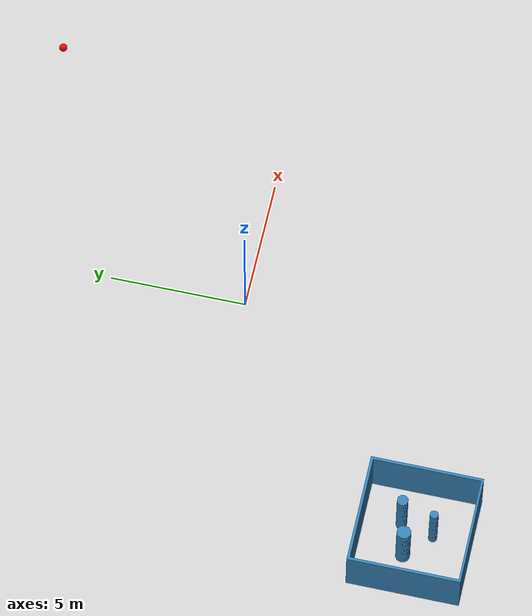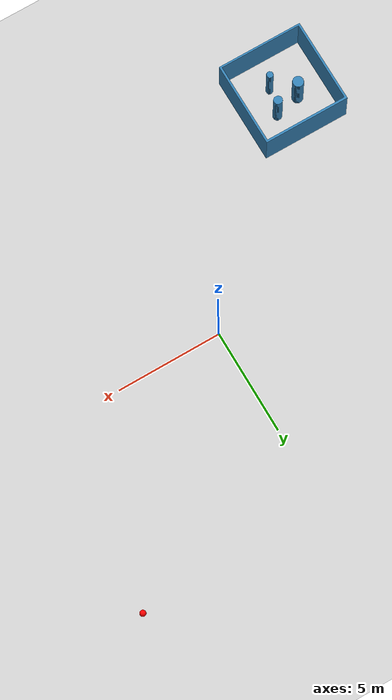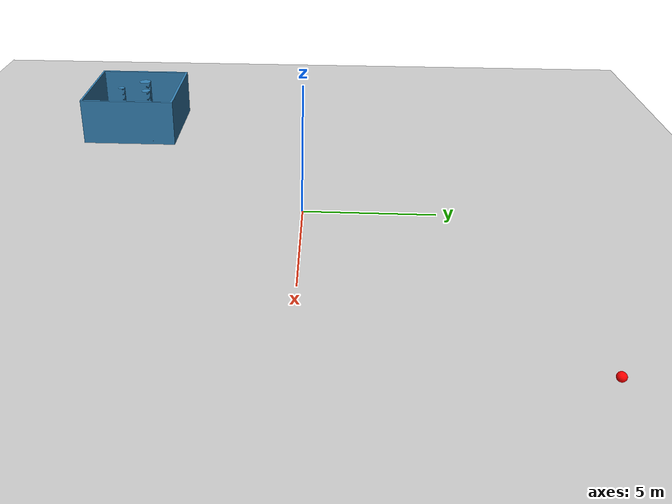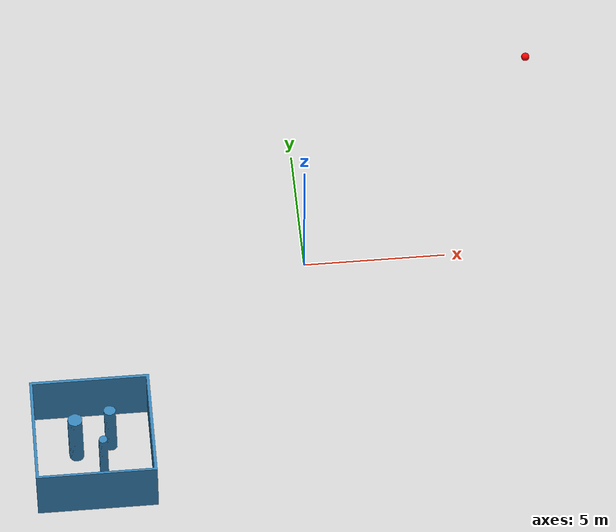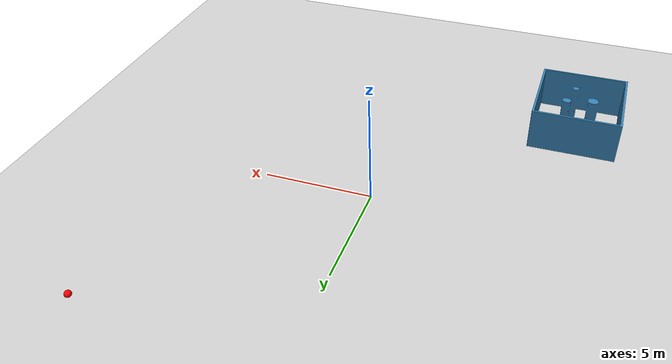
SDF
<?xml version="1.0" ?>
<sdf version="1.8">
  <world name="tp2_complex">
    <plugin filename="gz-sim-physics-system" name="gz::sim::systems::Physics"></plugin>
    <plugin filename="gz-sim-scene-broadcaster-system" name="gz::sim::systems::SceneBroadcaster"></plugin>
    <plugin filename="gz-sim-user-commands-system" name="gz::sim::systems::UserCommands"></plugin>

    <light type="directional" name="sun">
      <cast_shadows>true</cast_shadows>
      <pose>0 0 10 0 0 0</pose>
      <diffuse>0.8 0.8 0.8 1</diffuse>
      <specular>0.2 0.2 0.2 1</specular>
      <attenuation>
        <range>1000</range>
        <constant>0.9</constant>
        <linear>0.01</linear>
        <quadratic>0.001</quadratic>
      </attenuation>
      <direction>-0.5 0.1 -0.9</direction>
    </light>

    <!-- Keeps the floor grid so your map has something to sit on -->
    <model name="ground_plane">
      <static>true</static>
      <link name="link">
        <collision name="collision">
          <geometry><plane><normal>0 0 1</normal><size>100 100</size></plane></geometry>
        </collision>
        <visual name="visual">
          <geometry><plane><normal>0 0 1</normal><size>100 100</size></plane></geometry>
          <material>
            <ambient>0.8 0.8 0.8 1</ambient>
            <diffuse>0.8 0.8 0.8 1</diffuse>
            <specular>0.8 0.8 0.8 1</specular>
          </material>
        </visual>
      </link>
    </model>

    <!-- Marcador visual do Goal -->
    <model name="goal_marker">
      <static>true</static>
      <pose>9.0 9.0 0.1 0 0 0</pose>
      <link name="link">
        <visual name="visual">
          <geometry>
            <sphere>
              <radius>0.15</radius>
            </sphere>
          </geometry>
          <material>
            <ambient>1.0 0.0 0.0 1.0</ambient>
            <diffuse>1.0 0.0 0.0 1.0</diffuse>
            <specular>0.5 0.5 0.5 1.0</specular>
          </material>
        </visual>
      </link>
    </model>

    <!-- YOUR NEW MAP IS NOW THE ONLY ENVIRONMENT -->
    <model name="stl_map">
      <static>true</static>
      <pose>0 0 0 0 0 0</pose>
      <link name="map_link">
        <collision name="collision">
          <geometry>
            <mesh>
              <uri>meshes/map04.stl</uri>
            </mesh>
          </geometry>
        </collision>
        <visual name="visual">
          <geometry>
            <mesh>
              <uri>meshes/map04.stl</uri>
            </mesh>
          </geometry>
          <material>
            <ambient>0.2 0.5 0.7 1</ambient>
            <diffuse>0.2 0.5 0.7 1</diffuse>
          </material>
        </visual>
      </link>
    </model>

  </world>
</sdf>
